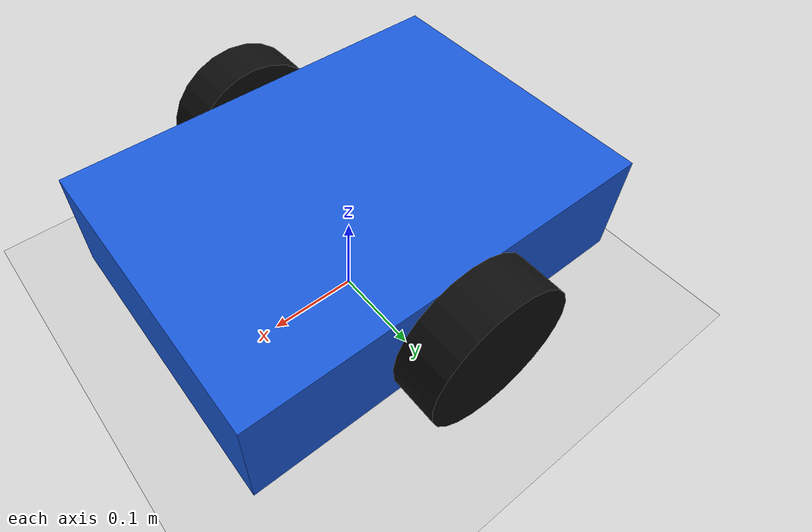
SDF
<?xml version="1.0" ?>
<sdf version="1.10">
  <world name="pobs_empty_world">

    <physics name="1ms" type="ignored">
      <max_step_size>0.001</max_step_size>
      <real_time_factor>1.0</real_time_factor>
    </physics>

    <plugin
      filename="gz-sim-physics-system"
      name="gz::sim::systems::Physics"/>

    <plugin
      filename="gz-sim-user-commands-system"
      name="gz::sim::systems::UserCommands"/>

    <plugin
      filename="gz-sim-scene-broadcaster-system"
      name="gz::sim::systems::SceneBroadcaster"/>

    <plugin
      filename="gz-sim-imu-system"
      name="gz::sim::systems::Imu"/>

    <light type="directional" name="sun">
      <pose>0 0 10 0 0 0</pose>
      <cast_shadows>true</cast_shadows>
      <intensity>1.0</intensity>
      <direction>-0.5 0.1 -0.9</direction>
    </light>

    <model name="ground_plane">
      <static>true</static>
      <link name="link">
        <collision name="collision">
          <geometry>
            <plane>
              <normal>0 0 1</normal>
              <size>100 100</size>
            </plane>
          </geometry>
        </collision>
        <visual name="visual">
          <geometry>
            <plane>
              <normal>0 0 1</normal>
              <size>100 100</size>
            </plane>
          </geometry>
          <material>
            <ambient>0.8 0.8 0.8 1</ambient>
            <diffuse>0.8 0.8 0.8 1</diffuse>
          </material>
        </visual>
      </link>
    </model>
    <include>
      <uri>model://2-wheeled_bot</uri>
      <name>2-wheeled_bot</name>
      <pose>0 0 0.12 0 0 0</pose>
    </include>

  </world>
</sdf>

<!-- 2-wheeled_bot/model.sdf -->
<sdf version="1.10">
  <model name="2-wheeled_bot">

    <pose>0 0 0.12 0 0 0</pose>

    <link name="base_link">
      <inertial>
        <mass>4.0</mass>
        <inertia>
          <ixx>0.06</ixx>
          <iyy>0.08</iyy>
          <izz>0.10</izz>
        </inertia>
      </inertial>

      <collision name="collision">
        <geometry>
          <box>
            <size>0.45 0.32 0.12</size>
          </box>
        </geometry>
      </collision>

      <visual name="visual">
        <geometry>
          <box>
            <size>0.45 0.32 0.12</size>
          </box>
        </geometry>
        <material>
          <ambient>0.10 0.35 0.85 1</ambient>
          <diffuse>0.10 0.35 0.85 1</diffuse>
        </material>
      </visual>

      <sensor name="imu" type="imu">
        <always_on>true</always_on>
        <update_rate>100</update_rate>
        <visualize>false</visualize>
        <topic>/model/2-wheeled_bot/imu</topic>
      </sensor>
    </link>

    <link name="left_wheel">
      <pose>0 0.19 0 1.5708 0 0</pose>

      <inertial>
        <mass>0.5</mass>
        <inertia>
          <ixx>0.002</ixx>
          <iyy>0.002</iyy>
          <izz>0.001</izz>
        </inertia>
      </inertial>

      <collision name="collision">
        <geometry>
          <cylinder>
            <radius>0.08</radius>
            <length>0.05</length>
          </cylinder>
        </geometry>
        <surface>
          <friction>
            <ode>
              <mu>1.5</mu>
              <mu2>1.5</mu2>
            </ode>
          </friction>
        </surface>
      </collision>

      <visual name="visual">
        <geometry>
          <cylinder>
            <radius>0.08</radius>
            <length>0.05</length>
          </cylinder>
        </geometry>
        <material>
          <ambient>0.05 0.05 0.05 1</ambient>
          <diffuse>0.05 0.05 0.05 1</diffuse>
        </material>
      </visual>
    </link>

    <joint name="left_wheel_joint" type="revolute">
      <parent>base_link</parent>
      <child>left_wheel</child>

      <axis>
        <xyz expressed_in="__model__">0 1 0</xyz>
        <limit>
          <lower>-1e16</lower>
          <upper>1e16</upper>
          <effort>10</effort>
          <velocity>20</velocity>
        </limit>
      </axis>
    </joint>

    <link name="right_wheel">
      <pose>0 -0.19 0 1.5708 0 0</pose>

      <inertial>
        <mass>0.5</mass>
        <inertia>
          <ixx>0.002</ixx>
          <iyy>0.002</iyy>
          <izz>0.001</izz>
        </inertia>
      </inertial>

      <collision name="collision">
        <geometry>
          <cylinder>
            <radius>0.08</radius>
            <length>0.05</length>
          </cylinder>
        </geometry>
        <surface>
          <friction>
            <ode>
              <mu>1.5</mu>
              <mu2>1.5</mu2>
            </ode>
          </friction>
        </surface>
      </collision>

      <visual name="visual">
        <geometry>
          <cylinder>
            <radius>0.08</radius>
            <length>0.05</length>
          </cylinder>
        </geometry>
        <material>
          <ambient>0.05 0.05 0.05 1</ambient>
          <diffuse>0.05 0.05 0.05 1</diffuse>
        </material>
      </visual>
    </link>

    <joint name="right_wheel_joint" type="revolute">
      <parent>base_link</parent>
      <child>right_wheel</child>

      <axis>
        <xyz expressed_in="__model__">0 1 0</xyz>
        <limit>
          <lower>-1e16</lower>
          <upper>1e16</upper>
          <effort>10</effort>
          <velocity>20</velocity>
        </limit>
      </axis>
    </joint>

    <link name="rear_caster">
      <pose>-0.18 0 -0.045 0 0 0</pose>

      <inertial>
        <mass>0.15</mass>
        <inertia>
          <ixx>0.0002</ixx>
          <iyy>0.0002</iyy>
          <izz>0.0002</izz>
        </inertia>
      </inertial>

      <collision name="collision">
        <geometry>
          <sphere>
            <radius>0.035</radius>
          </sphere>
        </geometry>
        <surface>
          <friction>
            <ode>
              <mu>0.05</mu>
              <mu2>0.05</mu2>
            </ode>
          </friction>
        </surface>
      </collision>

      <visual name="visual">
        <geometry>
          <sphere>
            <radius>0.035</radius>
          </sphere>
        </geometry>
        <material>
          <ambient>0.3 0.3 0.3 1</ambient>
          <diffuse>0.3 0.3 0.3 1</diffuse>
        </material>
      </visual>
    </link>

    <joint name="rear_caster_joint" type="ball">
      <parent>base_link</parent>
      <child>rear_caster</child>
    </joint>

    <plugin
      filename="gz-sim-diff-drive-system"
      name="gz::sim::systems::DiffDrive">
      <left_joint>left_wheel_joint</left_joint>
      <right_joint>right_wheel_joint</right_joint>
      <wheel_separation>0.38</wheel_separation>
      <wheel_radius>0.08</wheel_radius>
      <odom_publish_frequency>30</odom_publish_frequency>
      <topic>cmd_vel</topic>
      <odom_topic>odom</odom_topic>
      <frame_id>odom</frame_id>
      <child_frame_id>base_link</child_frame_id>
    </plugin>

    <plugin
      filename="gz-sim-imu-system"
      name="gz::sim::systems::Imu">
    </plugin>

  </model>
</sdf>
